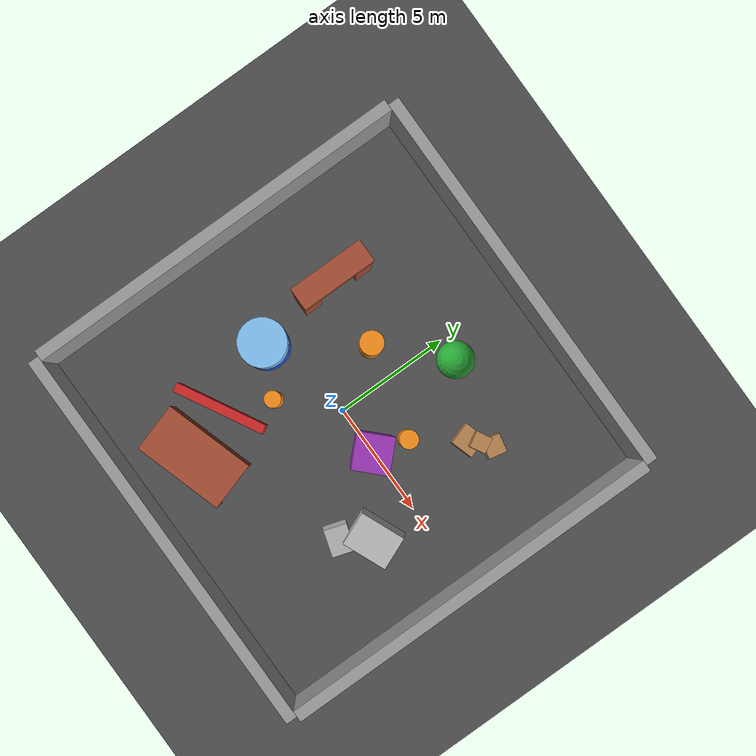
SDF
<sdf version='1.7'>
  <world name='custom_arena'>

    <!-- Lighting -->
    <light name='sun' type='directional'>
      <cast_shadows>1</cast_shadows>
      <pose>0 0 10 0 -0 0</pose>
      <diffuse>0.8 0.8 0.8 1</diffuse>
      <specular>0.2 0.2 0.2 1</specular>
      <attenuation>
        <range>1000</range>
        <constant>0.9</constant>
        <linear>0.01</linear>
        <quadratic>0.001</quadratic>
      </attenuation>
      <direction>-0.5 0.1 -0.9</direction>
    </light>

    <!-- Ground Plane -->
    <model name='ground_plane'>
      <static>1</static>
      <link name='link'>
        <collision name='collision'>
          <geometry>
            <plane>
              <normal>0 0 1</normal>
              <size>20 20</size>
            </plane>
          </geometry>
          <surface>
            <friction>
              <ode>
                <mu>100</mu>
                <mu2>50</mu2>
              </ode>
            </friction>
          </surface>
        </collision>
        <visual name='visual'>
          <cast_shadows>0</cast_shadows>
          <geometry>
            <plane>
              <normal>0 0 1</normal>
              <size>20 20</size>
            </plane>
          </geometry>
          <material>
            <script>
              <uri>file://media/materials/scripts/gazebo.material</uri>
              <name>Gazebo/DarkGrey</name>
            </script>
          </material>
        </visual>
      </link>
    </model>

    <!-- Physics -->
    <physics type='ode'>
      <max_step_size>0.001</max_step_size>
      <real_time_factor>1</real_time_factor>
      <real_time_update_rate>1000</real_time_update_rate>
    </physics>

    <!-- Main Arena Features -->
    <model name='arena_features'>
      <pose>0 0 0 0 0 0</pose>
      <static>1</static>

      <!-- Boundary Walls (15x15m interior) -->
      <link name='North_Wall'>
        <pose>0 8.75 1.5 0 0 0</pose>
        <collision name='col'><geometry><box><size>17.5 0.5 3</size></box></geometry></collision>
        <visual name='vis'><geometry><box><size>17.5 0.5 3</size></box></geometry>
        <material><script><name>Gazebo/Grey</name></script></material></visual>
      </link>
      <link name='South_Wall'>
        <pose>0 -8.75 1.5 0 0 0</pose>
        <collision name='col'><geometry><box><size>17.5 0.5 3</size></box></geometry></collision>
        <visual name='vis'><geometry><box><size>17.5 0.5 3</size></box></geometry>
        <material><script><name>Gazebo/Grey</name></script></material></visual>
      </link>
      <link name='East_Wall'>
        <pose>8.75 0 1.5 0 0 0</pose>
        <collision name='col'><geometry><box><size>0.5 17 3</size></box></geometry></collision>
        <visual name='vis'><geometry><box><size>0.5 17 3</size></box></geometry>
        <material><script><name>Gazebo/Grey</name></script></material></visual>
      </link>
      <link name='West_Wall'>
        <pose>-8.75 0 1.5 0 0 0</pose>
        <collision name='col'><geometry><box><size>0.5 17 3</size></box></geometry></collision>
        <visual name='vis'><geometry><box><size>0.5 17 3</size></box></geometry>
        <material><script><name>Gazebo/Grey</name></script></material></visual>
      </link>

      <!-- Central Obelisk -->
      <link name='Central_Obelisk'>
        <pose>2 0 2.5 0 0 0.785</pose>
        <collision name='col'><geometry><box><size>1.5 1.5 5</size></box></geometry></collision>
        <visual name='vis'><geometry><box><size>1.5 1.5 5</size></box></geometry>
        <material><script><name>Gazebo/Purple</name></script></material></visual>
      </link>

      <!-- Spiral Pillars (around center) -->
      <link name='Spiral_Pillar_1'>
        <pose>2.5 1.5 1 0 0 0</pose>
        <collision name='col'><geometry><cylinder><radius>0.4</radius><length>2</length></cylinder></geometry></collision>
        <visual name='vis'><geometry><cylinder><radius>0.4</radius><length>2</length></cylinder></geometry>
        <material><script><name>Gazebo/Orange</name></script></material></visual>
      </link>
      <link name='Spiral_Pillar_2'>
        <pose>-1.5 2.5 1.5 0 0 0</pose>
        <collision name='col'><geometry><cylinder><radius>0.5</radius><length>3</length></cylinder></geometry></collision>
        <visual name='vis'><geometry><cylinder><radius>0.5</radius><length>3</length></cylinder></geometry>
        <material><script><name>Gazebo/Orange</name></script></material></visual>
      </link>
      <link name='Spiral_Pillar_3'>
        <pose>-2 -2 1.25 0 0 0</pose>
        <collision name='col'><geometry><cylinder><radius>0.35</radius><length>2.5</length></cylinder></geometry></collision>
        <visual name='vis'><geometry><cylinder><radius>0.35</radius><length>2.5</length></cylinder></geometry>
        <material><script><name>Gazebo/Orange</name></script></material></visual>
      </link>

      <!-- Ruined Arch -->
      <link name='Arch_Left'>
        <pose>-4.5 4 1.75 0 0 0</pose>
        <collision name='col'><geometry><box><size>0.8 0.8 3.5</size></box></geometry></collision>
        <visual name='vis'><geometry><box><size>0.8 0.8 3.5</size></box></geometry>
        <material><script><name>Gazebo/Bricks</name></script></material></visual>
      </link>
      <link name='Arch_Right'>
        <pose>-4.5 1.5 1.75 0 0 0</pose>
        <collision name='col'><geometry><box><size>0.8 0.8 3.5</size></box></geometry></collision>
        <visual name='vis'><geometry><box><size>0.8 0.8 3.5</size></box></geometry>
        <material><script><name>Gazebo/Bricks</name></script></material></visual>
      </link>
      <link name='Arch_Top'>
        <pose>-4.5 2.75 3.7 0 0 0</pose>
        <collision name='col'><geometry><box><size>1 3.3 0.5</size></box></geometry></collision>
        <visual name='vis'><geometry><box><size>1 3.3 0.5</size></box></geometry>
        <material><script><name>Gazebo/Bricks</name></script></material></visual>
      </link>

      <!-- Scattered Crates -->
      <link name='Crate_1'>
        <pose>4 3.5 0.5 0 0 0.3</pose>
        <collision name='col'><geometry><box><size>1 1 1</size></box></geometry></collision>
        <visual name='vis'><geometry><box><size>1 1 1</size></box></geometry>
        <material><script><name>Gazebo/Wood</name></script></material></visual>
      </link>
      <link name='Crate_2'>
        <pose>4.8 4.2 0.5 0 0 -0.2</pose>
        <collision name='col'><geometry><box><size>0.8 0.8 1</size></box></geometry></collision>
        <visual name='vis'><geometry><box><size>0.8 0.8 1</size></box></geometry>
        <material><script><name>Gazebo/Wood</name></script></material></visual>
      </link>
      <link name='Crate_3'>
        <pose>4.3 3.8 1.4 0 0 0.5</pose>
        <collision name='col'><geometry><box><size>0.7 0.7 0.7</size></box></geometry></collision>
        <visual name='vis'><geometry><box><size>0.7 0.7 0.7</size></box></geometry>
        <material><script><name>Gazebo/Wood</name></script></material></visual>
      </link>

      <!-- Rocky Outcrop -->
      <link name='Rock_Large'>
        <pose>5 -2 0.75 0.1 0 0.4</pose>
        <collision name='col'><geometry><box><size>2 1.5 1.5</size></box></geometry></collision>
        <visual name='vis'><geometry><box><size>2 1.5 1.5</size></box></geometry>
        <material><script><name>Gazebo/Rock</name></script></material></visual>
      </link>
      <link name='Rock_Medium'>
        <pose>4.2 -3.2 0.4 0 0.15 -0.3</pose>
        <collision name='col'><geometry><box><size>1.2 1 0.8</size></box></geometry></collision>
        <visual name='vis'><geometry><box><size>1.2 1 0.8</size></box></geometry>
        <material><script><name>Gazebo/Rock</name></script></material></visual>
      </link>

      <!-- Barricade Wall -->
      <link name='Barricade'>
        <pose>-3 -4 0.75 0 0 0.5</pose>
        <collision name='col'><geometry><box><size>4 0.4 1.5</size></box></geometry></collision>
        <visual name='vis'><geometry><box><size>4 0.4 1.5</size></box></geometry>
        <material><script><name>Gazebo/Red</name></script></material></visual>
      </link>

      <!-- Observation Tower Base -->
      <link name='Tower_Base'>
        <pose>-4 -1 1 0 0 0</pose>
        <collision name='col'><geometry><cylinder><radius>1.0</radius><length>2</length></cylinder></geometry></collision>
        <visual name='vis'><geometry><cylinder><radius>1.0</radius><length>2</length></cylinder></geometry>
        <material><script><name>Gazebo/Blue</name></script></material></visual>
      </link>
      <link name='Tower_Top'>
        <pose>-4 -1 2.75 0 0 0</pose>
        <collision name='col'><geometry><cylinder><radius>1.0</radius><length>1.5</length></cylinder></geometry></collision>
        <visual name='vis'><geometry><cylinder><radius>1.0</radius><length>1.5</length></cylinder></geometry>
        <material><script><name>Gazebo/SkyBlue</name></script></material></visual>
      </link>

      <!-- Fallen Column -->

      <!-- Mysterious Sphere -->
      <link name='Sphere'>
        <pose>1 5 0.8 0 0 0</pose>
        <collision name='col'><geometry><sphere><radius>0.8</radius></sphere></geometry></collision>
        <visual name='vis'><geometry><sphere><radius>0.8</radius></sphere></geometry>
        <material><script><name>Gazebo/Green</name></script></material></visual>
      </link>

    </model>

    <!-- Tunnel Structure -->
    <model name='passage_tunnel'>
      <pose>-2 -6 0 0 0 0.3</pose>
      <static>1</static>

      <link name='wall_left'>
        <pose>0 1 0.75 0 0 0</pose>
        <collision name='c'><geometry><box><size>4 0.15 1.5</size></box></geometry></collision>
        <visual name='v'><geometry><box><size>4 0.15 1.5</size></box></geometry>
        <material><script><name>Gazebo/Bricks</name></script></material></visual>
      </link>

      <link name='wall_right'>
        <pose>0 -1 0.75 0 0 0</pose>
        <collision name='c'><geometry><box><size>4 0.15 1.5</size></box></geometry></collision>
        <visual name='v'><geometry><box><size>4 0.15 1.5</size></box></geometry>
        <material><script><name>Gazebo/Bricks</name></script></material></visual>
      </link>

      <link name='roof'>
        <pose>0 0 1.55 0 0 0</pose>
        <collision name='c'><geometry><box><size>4 2.15 0.1</size></box></geometry></collision>
        <visual name='v'><geometry><box><size>4 2.15 0.1</size></box></geometry>
        <material><script><name>Gazebo/Bricks</name></script></material></visual>
      </link>
    </model>

  </world>
</sdf>
